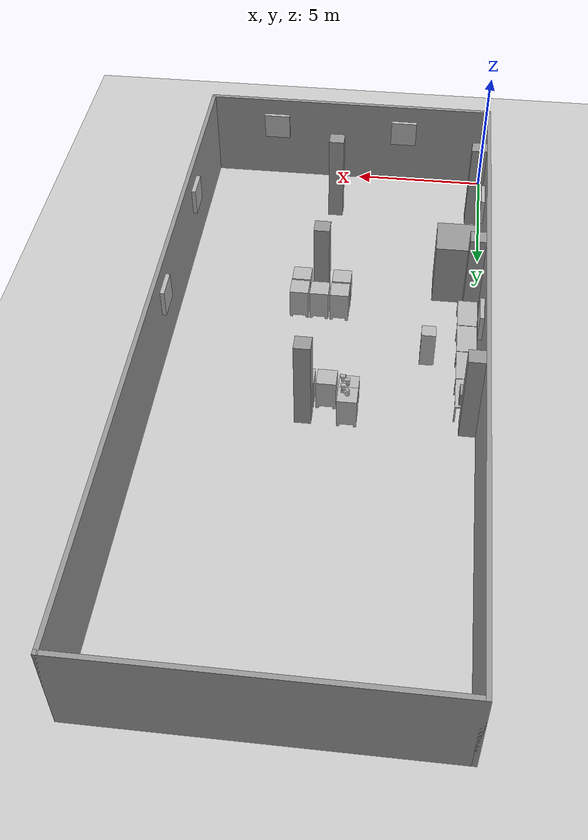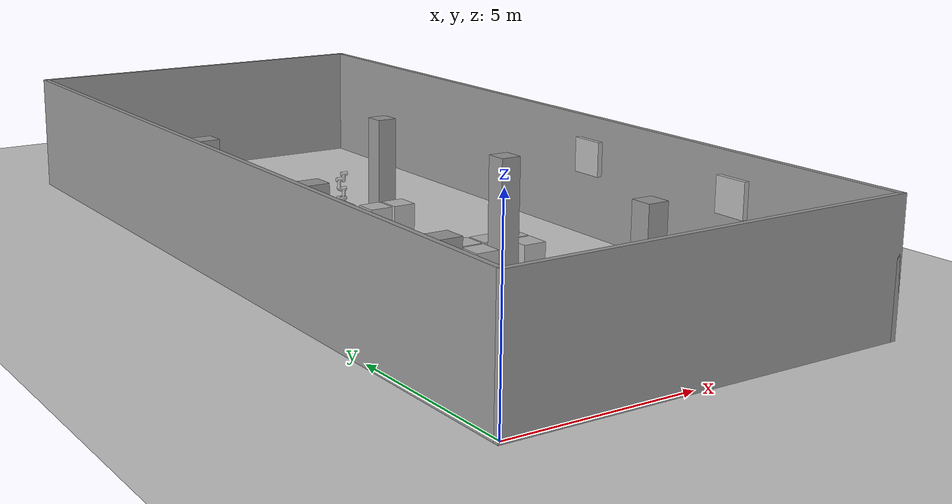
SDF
<sdf version="1.7">
 <world name="default">
  <model name="ground_plane">
   <static>1</static>
   <link name="link">
    <collision name="collision">
     <geometry><plane><normal>0 0 1</normal><size>100 100</size></plane></geometry>
     <surface>
      <contact><collide_bitmask>65535</collide_bitmask></contact>
      <friction><ode><mu>100</mu><mu2>50</mu2></ode></friction>
     </surface>
    </collision>
    <visual name="visual">
     <cast_shadows>0</cast_shadows>
     <geometry><plane><normal>0 0 1</normal><size>100 100</size></plane></geometry>
     <material>
      <script><uri>file://media/materials/scripts/gazebo.material</uri><name>Gazebo/Grey</name></script>
     </material>
    </visual>
   </link>
  </model>
  <model name="moving_box">
   <pose>1.75 10.5 0.5 0 0 0</pose>
   <static>false</static>
   <link name="link">
    <collision name="collision"><geometry><box><size>0.5 0.5 1.8</size></box></geometry></collision>
    <visual name="visual">
     <geometry><box><size>0.5 0.5 1.8</size></box></geometry>
     <material>Gray</material>
    </visual>
   </link>
   <plugin name="move_box_plugin" filename="libmoving_box_plugin.so"/>
  </model>
  <model name="crta_zid">
   <pose>5.45 12.5 0 0 -0 0</pose>
   <link name="Wall_0">
    <collision name="Wall_0_Collision">
     <geometry><box><size>11.2 0.15 3.5</size></box></geometry>
     <pose>0 0 1.75 0 -0 0</pose>
    </collision>
    <visual name="Wall_0_Visual">
     <pose>0 0 1.75 0 -0 0</pose>
     <geometry><box><size>11.2 0.15 3.5</size></box></geometry>
     <material>
      <script><uri>file://media/materials/scripts/gazebo.material</uri><name>Gazebo/Gray</name></script>
      <ambient>1 1 1 1</ambient>
     </material>
     <meta><layer>0</layer></meta>
    </visual>
    <pose>-0 -12.575 0 0 -0 0</pose>
   </link>
   <link name="Wall_2">
    <collision name="Wall_2_Collision">
     <geometry><box><size>25.3 0.15 3.5</size></box></geometry>
     <pose>0 0 1.75 0 -0 0</pose>
    </collision>
    <visual name="Wall_2_Visual">
     <pose>0 0 1.75 0 -0 0</pose>
     <geometry><box><size>25.3 0.15 3.5</size></box></geometry>
     <material>
      <script><uri>file://media/materials/scripts/gazebo.material</uri><name>Gazebo/Grey</name></script>
      <ambient>1 1 1 1</ambient>
     </material>
     <meta><layer>0</layer></meta>
    </visual>
    <pose>-5.525 0 0 0 -0 1.5708</pose>
   </link>
   <link name="Wall_3">
    <collision name="Wall_3_Collision">
     <geometry><box><size>11.2 0.15 3.5</size></box></geometry>
     <pose>0 0 1.75 0 -0 0</pose>
    </collision>
    <visual name="Wall_3_Visual">
     <pose>0 0 1.75 0 -0 0</pose>
     <geometry><box><size>11.2 0.15 3.5</size></box></geometry>
     <material>
      <script><uri>file://media/materials/scripts/gazebo.material</uri><name>Gazebo/Grey</name></script>
      <ambient>1 1 1 1</ambient>
     </material>
     <meta><layer>0</layer></meta>
    </visual>
    <pose>-0 12.575 0 0 -0 0</pose>
   </link>
   <link name="Wall_4">
    <collision name="Wall_4_Collision">
     <geometry><box><size>25.3 0.15 3.5</size></box></geometry>
     <pose>0 0 1.75 0 -0 0</pose>
    </collision>
    <visual name="Wall_4_Visual">
     <pose>0 0 1.75 0 -0 0</pose>
     <geometry><box><size>25.3 0.15 3.5</size></box></geometry>
     <material>
      <script><uri>file://media/materials/scripts/gazebo.material</uri><name>Gazebo/Grey</name></script>
      <ambient>1 1 1 1</ambient>
     </material>
     <meta><layer>0</layer></meta>
    </visual>
    <pose>5.525 0 0 0 -0 -1.5708</pose>
   </link>
   <static>1</static>
  </model>
  <model name="crta_stup_clone_0">
   <link name="link_0">
    <inertial>
     <mass>1</mass>
     <inertia>
      <ixx>0.166667</ixx>
      <ixy>0</ixy>
      <ixz>0</ixz>
      <iyy>0.166667</iyy>
      <iyz>0</iyz>
      <izz>0.166667</izz>
     </inertia>
    </inertial>
    <visual name="visual">
     <geometry><box><size>0.56 0.56 3.5</size></box></geometry>
     <material>
      <lighting>1</lighting>
      <script><uri>file://media/materials/scripts/gazebo.material</uri><name>Gazebo/Grey</name></script>
      <shader type="pixel"><normal_map>__default__</normal_map></shader>
      <ambient>0.3 0.3 0.3 1</ambient>
      <diffuse>0.7 0.7 0.7 1</diffuse>
      <specular>0.01 0.01 0.01 1</specular>
      <emissive>0 0 0 1</emissive>
     </material>
    </visual>
    <collision name="collision">
     <geometry><box><size>0.56 0.56 3.5</size></box></geometry>
     <surface>
      <friction>
       <ode><mu>1</mu><mu2>1</mu2><fdir1>0 0 0</fdir1><slip1>0</slip1><slip2>0</slip2></ode>
       <torsional>
        <coefficient>1</coefficient>
        <patch_radius>0</patch_radius>
        <surface_radius>0</surface_radius>
        <use_patch_radius>1</use_patch_radius>
        <ode><slip>0</slip></ode>
       </torsional>
      </friction>
      <bounce><restitution_coefficient>0</restitution_coefficient><threshold>1e+06</threshold></bounce>
      <contact>
       <collide_without_contact>0</collide_without_contact>
       <collide_without_contact_bitmask>1</collide_without_contact_bitmask>
       <collide_bitmask>1</collide_bitmask>
       <ode>
        <soft_cfm>0</soft_cfm>
        <soft_erp>0.2</soft_erp>
        <kp>1e+13</kp>
        <kd>1</kd>
        <max_vel>0.01</max_vel>
        <min_depth>0</min_depth>
       </ode>
       <bullet>
        <split_impulse>1</split_impulse>
        <split_impulse_penetration_threshold>-0.01</split_impulse_penetration_threshold>
        <soft_cfm>0</soft_cfm>
        <soft_erp>0.2</soft_erp>
        <kp>1e+13</kp>
        <kd>1</kd>
       </bullet>
      </contact>
     </surface>
    </collision>
   </link>
   <static>1</static>
   <pose>5.74 13.66 1.75 0 0 -0.000526</pose>
  </model>
  <model name="crta_stup_clone_1">
   <link name="link_0">
    <inertial>
     <mass>1</mass>
     <inertia>
      <ixx>0.166667</ixx>
      <ixy>0</ixy>
      <ixz>0</ixz>
      <iyy>0.166667</iyy>
      <iyz>0</iyz>
      <izz>0.166667</izz>
     </inertia>
    </inertial>
    <visual name="visual">
     <geometry><box><size>0.56 0.56 3.5</size></box></geometry>
     <material>
      <lighting>1</lighting>
      <script><uri>file://media/materials/scripts/gazebo.material</uri><name>Gazebo/Grey</name></script>
      <shader type="pixel"><normal_map>__default__</normal_map></shader>
      <ambient>0.3 0.3 0.3 1</ambient>
      <diffuse>0.7 0.7 0.7 1</diffuse>
      <specular>0.01 0.01 0.01 1</specular>
      <emissive>0 0 0 1</emissive>
     </material>
    </visual>
    <collision name="collision">
     <geometry><box><size>0.56 0.56 3.5</size></box></geometry>
     <surface>
      <friction>
       <ode><mu>1</mu><mu2>1</mu2><fdir1>0 0 0</fdir1><slip1>0</slip1><slip2>0</slip2></ode>
       <torsional>
        <coefficient>1</coefficient>
        <patch_radius>0</patch_radius>
        <surface_radius>0</surface_radius>
        <use_patch_radius>1</use_patch_radius>
        <ode><slip>0</slip></ode>
       </torsional>
      </friction>
      <bounce><restitution_coefficient>0</restitution_coefficient><threshold>1e+06</threshold></bounce>
      <contact>
       <collide_without_contact>0</collide_without_contact>
       <collide_without_contact_bitmask>1</collide_without_contact_bitmask>
       <collide_bitmask>1</collide_bitmask>
       <ode>
        <soft_cfm>0</soft_cfm>
        <soft_erp>0.2</soft_erp>
        <kp>1e+13</kp>
        <kd>1</kd>
        <max_vel>0.01</max_vel>
        <min_depth>0</min_depth>
       </ode>
       <bullet>
        <split_impulse>1</split_impulse>
        <split_impulse_penetration_threshold>-0.01</split_impulse_penetration_threshold>
        <soft_cfm>0</soft_cfm>
        <soft_erp>0.2</soft_erp>
        <kp>1e+13</kp>
        <kd>1</kd>
       </bullet>
      </contact>
     </surface>
    </collision>
   </link>
   <static>1</static>
   <pose>0.28 13.66 1.75 0 0 -0.000436</pose>
  </model>
  <model name="stolac1_clone_3">
   <static>1</static>
   <link name="base_link">
    <visual name="visual">
     <geometry>
      <mesh><uri>model://stolac1/meshes/crta_stolac1.STL</uri><scale>0.001 0.001 0.001</scale></mesh>
     </geometry>
    </visual>
    <collision name="collision">
     <pose>0.645 0.35 0.375 0 -0 0</pose>
     <geometry><box><size>1.29 0.7 0.75</size></box></geometry>
    </collision>
   </link>
   <pose>0.75 12.0593 0 0 -0 1.5708</pose>
  </model>
  <model name="stolac1_clone_4">
   <static>1</static>
   <link name="base_link">
    <visual name="visual">
     <geometry>
      <mesh><uri>model://stolac1/meshes/crta_stolac1.STL</uri><scale>0.001 0.001 0.001</scale></mesh>
     </geometry>
    </visual>
    <collision name="collision">
     <pose>0.645 0.35 0.375 0 -0 0</pose>
     <geometry><box><size>1.29 0.7 0.75</size></box></geometry>
    </collision>
   </link>
   <pose>0.75 10.7477 0 0 -0 1.5708</pose>
  </model>
  <model name="stolac1_clone_5">
   <static>1</static>
   <link name="base_link">
    <visual name="visual">
     <geometry>
      <mesh><uri>model://stolac1/meshes/crta_stolac1.STL</uri><scale>0.001 0.001 0.001</scale></mesh>
     </geometry>
    </visual>
    <collision name="collision">
     <pose>0.645 0.35 0.375 0 -0 0</pose>
     <geometry><box><size>1.29 0.7 0.75</size></box></geometry>
    </collision>
   </link>
   <pose>0.75 9.43821 0 0 -0 1.5708</pose>
  </model>
  <model name="stolac1_clone_6">
   <static>1</static>
   <link name="base_link">
    <visual name="visual">
     <geometry>
      <mesh><uri>model://stolac1/meshes/crta_stolac1.STL</uri><scale>0.001 0.001 0.001</scale></mesh>
     </geometry>
    </visual>
    <collision name="collision">
     <pose>0.645 0.35 0.375 0 -0 0</pose>
     <geometry><box><size>1.29 0.7 0.75</size></box></geometry>
    </collision>
   </link>
   <pose>0.75 8.12756 0 0 -0 1.5708</pose>
  </model>
  <model name="crta_stup_clone_0_clone">
   <link name="link_0">
    <inertial>
     <mass>1</mass>
     <inertia>
      <ixx>0.166667</ixx>
      <ixy>0</ixy>
      <ixz>0</ixz>
      <iyy>0.166667</iyy>
      <iyz>0</iyz>
      <izz>0.166667</izz>
     </inertia>
    </inertial>
    <visual name="visual">
     <geometry><box><size>0.56 0.56 3.5</size></box></geometry>
     <material>
      <lighting>1</lighting>
      <script><uri>file://media/materials/scripts/gazebo.material</uri><name>Gazebo/Grey</name></script>
      <shader type="pixel"><normal_map>__default__</normal_map></shader>
      <ambient>0.3 0.3 0.3 1</ambient>
      <diffuse>0.7 0.7 0.7 1</diffuse>
      <specular>0.01 0.01 0.01 1</specular>
      <emissive>0 0 0 1</emissive>
     </material>
    </visual>
    <collision name="collision">
     <geometry><box><size>0.56 0.56 3.5</size></box></geometry>
     <surface>
      <friction>
       <ode><mu>1</mu><mu2>1</mu2><fdir1>0 0 0</fdir1><slip1>0</slip1><slip2>0</slip2></ode>
       <torsional>
        <coefficient>1</coefficient>
        <patch_radius>0</patch_radius>
        <surface_radius>0</surface_radius>
        <use_patch_radius>1</use_patch_radius>
        <ode><slip>0</slip></ode>
       </torsional>
      </friction>
      <bounce><restitution_coefficient>0</restitution_coefficient><threshold>1e+06</threshold></bounce>
      <contact>
       <collide_without_contact>0</collide_without_contact>
       <collide_without_contact_bitmask>1</collide_without_contact_bitmask>
       <collide_bitmask>1</collide_bitmask>
       <ode>
        <soft_cfm>0</soft_cfm>
        <soft_erp>0.2</soft_erp>
        <kp>1e+13</kp>
        <kd>1</kd>
        <max_vel>0.01</max_vel>
        <min_depth>0</min_depth>
       </ode>
       <bullet>
        <split_impulse>1</split_impulse>
        <split_impulse_penetration_threshold>-0.01</split_impulse_penetration_threshold>
        <soft_cfm>0</soft_cfm>
        <soft_erp>0.2</soft_erp>
        <kp>1e+13</kp>
        <kd>1</kd>
       </bullet>
      </contact>
     </surface>
    </collision>
   </link>
   <static>1</static>
   <pose>5.74 7.8 1.75 0 0 -0.000526</pose>
  </model>
  <model name="crta_stup_clone_0_clone_0">
   <link name="link_0">
    <inertial>
     <mass>1</mass>
     <inertia>
      <ixx>0.166667</ixx>
      <ixy>0</ixy>
      <ixz>0</ixz>
      <iyy>0.166667</iyy>
      <iyz>0</iyz>
      <izz>0.166667</izz>
     </inertia>
    </inertial>
    <visual name="visual">
     <geometry><box><size>0.56 0.56 3.5</size></box></geometry>
     <material>
      <lighting>1</lighting>
      <script><uri>file://media/materials/scripts/gazebo.material</uri><name>Gazebo/Grey</name></script>
      <shader type="pixel"><normal_map>__default__</normal_map></shader>
      <ambient>0.3 0.3 0.3 1</ambient>
      <diffuse>0.7 0.7 0.7 1</diffuse>
      <specular>0.01 0.01 0.01 1</specular>
      <emissive>0 0 0 1</emissive>
     </material>
    </visual>
    <collision name="collision">
     <geometry><box><size>0.56 0.56 3.5</size></box></geometry>
     <surface>
      <friction>
       <ode><mu>1</mu><mu2>1</mu2><fdir1>0 0 0</fdir1><slip1>0</slip1><slip2>0</slip2></ode>
       <torsional>
        <coefficient>1</coefficient>
        <patch_radius>0</patch_radius>
        <surface_radius>0</surface_radius>
        <use_patch_radius>1</use_patch_radius>
        <ode><slip>0</slip></ode>
       </torsional>
      </friction>
      <bounce><restitution_coefficient>0</restitution_coefficient><threshold>1e+06</threshold></bounce>
      <contact>
       <collide_without_contact>0</collide_without_contact>
       <collide_without_contact_bitmask>1</collide_without_contact_bitmask>
       <collide_bitmask>1</collide_bitmask>
       <ode>
        <soft_cfm>0</soft_cfm>
        <soft_erp>0.2</soft_erp>
        <kp>1e+13</kp>
        <kd>1</kd>
        <max_vel>0.01</max_vel>
        <min_depth>0</min_depth>
       </ode>
       <bullet>
        <split_impulse>1</split_impulse>
        <split_impulse_penetration_threshold>-0.01</split_impulse_penetration_threshold>
        <soft_cfm>0</soft_cfm>
        <soft_erp>0.2</soft_erp>
        <kp>1e+13</kp>
        <kd>1</kd>
       </bullet>
      </contact>
     </surface>
    </collision>
   </link>
   <static>1</static>
   <pose>0.28 7.8 1.75 0 0 -0.000526</pose>
  </model>
  <model name="crta_stup_clone_0_clone_1">
   <link name="link_0">
    <inertial>
     <mass>1</mass>
     <inertia>
      <ixx>0.166667</ixx>
      <ixy>0</ixy>
      <ixz>0</ixz>
      <iyy>0.166667</iyy>
      <iyz>0</iyz>
      <izz>0.166667</izz>
     </inertia>
    </inertial>
    <visual name="visual">
     <geometry><box><size>0.56 0.56 3.5</size></box></geometry>
     <material>
      <lighting>1</lighting>
      <script><uri>file://media/materials/scripts/gazebo.material</uri><name>Gazebo/Grey</name></script>
      <shader type="pixel"><normal_map>__default__</normal_map></shader>
      <ambient>0.3 0.3 0.3 1</ambient>
      <diffuse>0.7 0.7 0.7 1</diffuse>
      <specular>0.01 0.01 0.01 1</specular>
      <emissive>0 0 0 1</emissive>
     </material>
    </visual>
    <collision name="collision">
     <geometry><box><size>0.56 0.56 3.5</size></box></geometry>
     <surface>
      <friction>
       <ode><mu>1</mu><mu2>1</mu2><fdir1>0 0 0</fdir1><slip1>0</slip1><slip2>0</slip2></ode>
       <torsional>
        <coefficient>1</coefficient>
        <patch_radius>0</patch_radius>
        <surface_radius>0</surface_radius>
        <use_patch_radius>1</use_patch_radius>
        <ode><slip>0</slip></ode>
       </torsional>
      </friction>
      <bounce><restitution_coefficient>0</restitution_coefficient><threshold>1e+06</threshold></bounce>
      <contact>
       <collide_without_contact>0</collide_without_contact>
       <collide_without_contact_bitmask>1</collide_without_contact_bitmask>
       <collide_bitmask>1</collide_bitmask>
       <ode>
        <soft_cfm>0</soft_cfm>
        <soft_erp>0.2</soft_erp>
        <kp>1e+13</kp>
        <kd>1</kd>
        <max_vel>0.01</max_vel>
        <min_depth>0</min_depth>
       </ode>
       <bullet>
        <split_impulse>1</split_impulse>
        <split_impulse_penetration_threshold>-0.01</split_impulse_penetration_threshold>
        <soft_cfm>0</soft_cfm>
        <soft_erp>0.2</soft_erp>
        <kp>1e+13</kp>
        <kd>1</kd>
       </bullet>
      </contact>
     </surface>
    </collision>
   </link>
   <static>1</static>
   <pose>5.74 2.4 1.75 0 0 -0.000526</pose>
  </model>
  <model name="crta_stup_clone_0_clone_2">
   <link name="link_0">
    <inertial>
     <mass>1</mass>
     <inertia>
      <ixx>0.166667</ixx>
      <ixy>0</ixy>
      <ixz>0</ixz>
      <iyy>0.166667</iyy>
      <iyz>0</iyz>
      <izz>0.166667</izz>
     </inertia>
    </inertial>
    <visual name="visual">
     <geometry><box><size>0.56 0.56 3.5</size></box></geometry>
     <material>
      <lighting>1</lighting>
      <script><uri>file://media/materials/scripts/gazebo.material</uri><name>Gazebo/Grey</name></script>
      <shader type="pixel"><normal_map>__default__</normal_map></shader>
      <ambient>0.3 0.3 0.3 1</ambient>
      <diffuse>0.7 0.7 0.7 1</diffuse>
      <specular>0.01 0.01 0.01 1</specular>
      <emissive>0 0 0 1</emissive>
     </material>
    </visual>
    <collision name="collision">
     <geometry><box><size>0.56 0.56 3.5</size></box></geometry>
     <surface>
      <friction>
       <ode><mu>1</mu><mu2>1</mu2><fdir1>0 0 0</fdir1><slip1>0</slip1><slip2>0</slip2></ode>
       <torsional>
        <coefficient>1</coefficient>
        <patch_radius>0</patch_radius>
        <surface_radius>0</surface_radius>
        <use_patch_radius>1</use_patch_radius>
        <ode><slip>0</slip></ode>
       </torsional>
      </friction>
      <bounce><restitution_coefficient>0</restitution_coefficient><threshold>1e+06</threshold></bounce>
      <contact>
       <collide_without_contact>0</collide_without_contact>
       <collide_without_contact_bitmask>1</collide_without_contact_bitmask>
       <collide_bitmask>1</collide_bitmask>
       <ode>
        <soft_cfm>0</soft_cfm>
        <soft_erp>0.2</soft_erp>
        <kp>1e+13</kp>
        <kd>1</kd>
        <max_vel>0.01</max_vel>
        <min_depth>0</min_depth>
       </ode>
       <bullet>
        <split_impulse>1</split_impulse>
        <split_impulse_penetration_threshold>-0.01</split_impulse_penetration_threshold>
        <soft_cfm>0</soft_cfm>
        <soft_erp>0.2</soft_erp>
        <kp>1e+13</kp>
        <kd>1</kd>
       </bullet>
      </contact>
     </surface>
    </collision>
   </link>
   <static>1</static>
   <pose>0.28 2.4 1.75 0 0 -0.000526</pose>
  </model>
  <model name="kutija1_clone_2">
   <static>1</static>
   <link name="base_link">
    <visual name="visual">
     <geometry>
      <mesh><uri>model://kutija1/meshes/crta_kutija1.STL</uri><scale>0.001 0.001 0.001</scale></mesh>
     </geometry>
    </visual>
    <collision name="collision">
     <pose>0.335 0.335 0.6 0 -0 0</pose>
     <geometry><box><size>0.67 0.67 1.2</size></box></geometry>
    </collision>
   </link>
   <pose>3.95083 13.2673 0 0 -0 0</pose>
  </model>
  <model name="kutija1_clone_4">
   <static>1</static>
   <link name="base_link">
    <visual name="visual">
     <geometry>
      <mesh><uri>model://kutija1/meshes/crta_kutija1.STL</uri><scale>0.001 0.001 0.001</scale></mesh>
     </geometry>
    </visual>
    <collision name="collision">
     <pose>0.335 0.335 0.6 0 -0 0</pose>
     <geometry><box><size>0.67 0.67 1.2</size></box></geometry>
    </collision>
   </link>
   <pose>4.70436 12.5387 0 0 -0 0</pose>
  </model>
  <model name="kutija1_clone_5">
   <static>1</static>
   <link name="base_link">
    <visual name="visual">
     <geometry>
      <mesh><uri>model://kutija1/meshes/crta_kutija1.STL</uri><scale>0.001 0.001 0.001</scale></mesh>
     </geometry>
    </visual>
    <collision name="collision">
     <pose>0.335 0.335 0.6 0 -0 0</pose>
     <geometry><box><size>0.67 0.67 1.2</size></box></geometry>
    </collision>
   </link>
   <pose>5.44822 12.539 0 0 -0 0</pose>
  </model>
  <model name="kutija1_0_clone">
   <static>1</static>
   <link name="base_link">
    <visual name="visual">
     <geometry>
      <mesh><uri>model://kutija2/meshes/crta_kutija2.STL</uri><scale>0.001 0.001 0.001</scale></mesh>
     </geometry>
    </visual>
    <collision name="collision">
     <pose>0.335 0.335 0.5 0 -0 0</pose>
     <geometry><box><size>0.67 0.67 1</size></box></geometry>
    </collision>
   </link>
   <pose>3.96211 12.5416 0 0 -0 0</pose>
  </model>
  <model name="ur3_robot">
   <static>1</static>
   <link name="base_link">
    <visual name="visual">
     <geometry>
      <mesh><uri>model://simple_ur3_robot/meshes/simple_ur3_robot.STL</uri><scale>0.001 0.001 0.001</scale></mesh>
     </geometry>
    </visual>
    <collision name="collision">
     <pose>0.164 0.075 0.4585 0 -0 0</pose>
     <geometry><box><size>0.328 0.15 0.917</size></box></geometry>
    </collision>
   </link>
   <pose>4.21108 13.5204 1.2 0 -0 0</pose>
  </model>
  <model name="kutija1_clone_5_clone">
   <static>1</static>
   <link name="base_link">
    <visual name="visual">
     <geometry>
      <mesh><uri>model://kutija1/meshes/crta_kutija1.STL</uri><scale>0.001 0.001 0.001</scale></mesh>
     </geometry>
    </visual>
    <collision name="collision">
     <pose>0.335 0.335 0.6 0 -0 0</pose>
     <geometry><box><size>0.67 0.67 1.2</size></box></geometry>
    </collision>
   </link>
   <pose>5.41149 8.15798 0 0 -0 0</pose>
  </model>
  <model name="kutija1_clone_5_clone_0">
   <static>1</static>
   <link name="base_link">
    <visual name="visual">
     <geometry>
      <mesh><uri>model://kutija1/meshes/crta_kutija1.STL</uri><scale>0.001 0.001 0.001</scale></mesh>
     </geometry>
    </visual>
    <collision name="collision">
     <pose>0.335 0.335 0.6 0 -0 0</pose>
     <geometry><box><size>0.67 0.67 1.2</size></box></geometry>
    </collision>
   </link>
   <pose>4.6807 8.16446 0 0 -0 0</pose>
  </model>
  <model name="kutija1_clone_5_clone_1">
   <static>1</static>
   <link name="base_link">
    <visual name="visual">
     <geometry>
      <mesh><uri>model://kutija1/meshes/crta_kutija1.STL</uri><scale>0.001 0.001 0.001</scale></mesh>
     </geometry>
    </visual>
    <collision name="collision">
     <pose>0.335 0.335 0.6 0 -0 0</pose>
     <geometry><box><size>0.67 0.67 1.2</size></box></geometry>
    </collision>
   </link>
   <pose>4.67263 7.42555 0 0 -0 0</pose>
  </model>
  <model name="kutija1_clone_5_clone_2">
   <static>1</static>
   <link name="base_link">
    <visual name="visual">
     <geometry>
      <mesh><uri>model://kutija1/meshes/crta_kutija1.STL</uri><scale>0.001 0.001 0.001</scale></mesh>
     </geometry>
    </visual>
    <collision name="collision">
     <pose>0.335 0.335 0.6 0 -0 0</pose>
     <geometry><box><size>0.67 0.67 1.2</size></box></geometry>
    </collision>
   </link>
   <pose>6.13841 8.15363 0 0 -0 0</pose>
  </model>
  <model name="kutija1_clone_5_clone_3">
   <static>1</static>
   <link name="base_link">
    <visual name="visual">
     <geometry>
      <mesh><uri>model://kutija1/meshes/crta_kutija1.STL</uri><scale>0.001 0.001 0.001</scale></mesh>
     </geometry>
    </visual>
    <collision name="collision">
     <pose>0.335 0.335 0.6 0 -0 0</pose>
     <geometry><box><size>0.67 0.67 1.2</size></box></geometry>
    </collision>
   </link>
   <pose>6.1332 7.42296 0 0 -0 0</pose>
  </model>
  <model name="crat_ormar">
   <link name="link_2">
    <inertial>
     <mass>1</mass>
     <inertia>
      <ixx>0.166667</ixx>
      <ixy>0</ixy>
      <ixz>0</ixz>
      <iyy>0.166667</iyy>
      <iyz>0</iyz>
      <izz>0.166667</izz>
     </inertia>
    </inertial>
    <pose>-0 -0 1e-06 0 -0 0</pose>
    <visual name="visual">
     <geometry><box><size>1.5 1.5 2.5</size></box></geometry>
     <material>
      <lighting>1</lighting>
      <script><uri>file://media/materials/scripts/gazebo.material</uri><name>Gazebo/Grey</name></script>
      <shader type="pixel"><normal_map>__default__</normal_map></shader>
      <ambient>0.3 0.3 0.3 1</ambient>
      <diffuse>0.7 0.7 0.7 1</diffuse>
      <specular>0.01 0.01 0.01 1</specular>
      <emissive>0 0 0 1</emissive>
     </material>
    </visual>
    <collision name="collision">
     <geometry><box><size>1.5 1.5 2.5</size></box></geometry>
     <surface>
      <friction>
       <ode><mu>1</mu><mu2>1</mu2><fdir1>0 0 0</fdir1><slip1>0</slip1><slip2>0</slip2></ode>
       <torsional>
        <coefficient>1</coefficient>
        <patch_radius>0</patch_radius>
        <surface_radius>0</surface_radius>
        <use_patch_radius>1</use_patch_radius>
        <ode><slip>0</slip></ode>
       </torsional>
      </friction>
      <bounce><restitution_coefficient>0</restitution_coefficient><threshold>1e+06</threshold></bounce>
      <contact>
       <collide_without_contact>0</collide_without_contact>
       <collide_without_contact_bitmask>1</collide_without_contact_bitmask>
       <collide_bitmask>1</collide_bitmask>
       <ode>
        <soft_cfm>0</soft_cfm>
        <soft_erp>0.2</soft_erp>
        <kp>1e+13</kp>
        <kd>1</kd>
        <max_vel>0.01</max_vel>
        <min_depth>0</min_depth>
       </ode>
       <bullet>
        <split_impulse>1</split_impulse>
        <split_impulse_penetration_threshold>-0.01</split_impulse_penetration_threshold>
        <soft_cfm>0</soft_cfm>
        <soft_erp>0.2</soft_erp>
        <kp>1e+13</kp>
        <kd>1</kd>
       </bullet>
      </contact>
     </surface>
    </collision>
   </link>
   <static>0</static>
   <pose>0.93546 6.6441 1.25 -1e-06 0 2e-05</pose>
  </model>
  <model name="printer">
   <link name="link_0">
    <inertial>
     <mass>1</mass>
     <inertia>
      <ixx>0.166667</ixx>
      <ixy>0</ixy>
      <ixz>0</ixz>
      <iyy>0.166667</iyy>
      <iyz>0</iyz>
      <izz>0.166667</izz>
     </inertia>
    </inertial>
    <visual name="visual">
     <geometry><box><size>0.5 0.5 0.5</size></box></geometry>
     <material>
      <lighting>1</lighting>
      <script><uri>file://media/materials/scripts/gazebo.material</uri><name>Gazebo/Grey</name></script>
      <shader type="pixel"><normal_map>__default__</normal_map></shader>
      <ambient>0.3 0.3 0.3 1</ambient>
      <diffuse>0.7 0.7 0.7 1</diffuse>
      <specular>0.01 0.01 0.01 1</specular>
      <emissive>0 0 0 1</emissive>
     </material>
    </visual>
    <collision name="collision">
     <geometry><box><size>0.5 0.5 0.5</size></box></geometry>
     <surface>
      <friction>
       <ode><mu>1</mu><mu2>1</mu2><fdir1>0 0 0</fdir1><slip1>0</slip1><slip2>0</slip2></ode>
       <torsional>
        <coefficient>1</coefficient>
        <patch_radius>0</patch_radius>
        <surface_radius>0</surface_radius>
        <use_patch_radius>1</use_patch_radius>
        <ode><slip>0</slip></ode>
       </torsional>
      </friction>
      <bounce><restitution_coefficient>0</restitution_coefficient><threshold>1e+06</threshold></bounce>
      <contact>
       <collide_without_contact>0</collide_without_contact>
       <collide_without_contact_bitmask>1</collide_without_contact_bitmask>
       <collide_bitmask>1</collide_bitmask>
       <ode>
        <soft_cfm>0</soft_cfm>
        <soft_erp>0.2</soft_erp>
        <kp>1e+13</kp>
        <kd>1</kd>
        <max_vel>0.01</max_vel>
        <min_depth>0</min_depth>
       </ode>
       <bullet>
        <split_impulse>1</split_impulse>
        <split_impulse_penetration_threshold>-0.01</split_impulse_penetration_threshold>
        <soft_cfm>0</soft_cfm>
        <soft_erp>0.2</soft_erp>
        <kp>1e+13</kp>
        <kd>1</kd>
       </bullet>
      </contact>
     </surface>
    </collision>
   </link>
   <static>0</static>
   <pose>0.371561 13.0118 1 -0 -0 -0</pose>
  </model>
  <model name="poster_clone_clone_0_clone_0">
   <static>1</static>
   <link name="poster_link">
    <collision name="poster_collision">
     <geometry><box><size>1 0.15 1</size></box></geometry>
     <surface><contact><collide_without_contact>1</collide_without_contact></contact></surface>
    </collision>
    <visual name="poster_visual">
     <geometry><box><size>1 0.15 1</size></box></geometry>
     <material>
      <script>
       <uri>model://poster/materials/scripts</uri>
       <uri>model://poster/materials/textures</uri>
       <name>Poster/PosterTexture</name>
      </script>
     </material>
    </visual>
   </link>
   <pose>10.823 10.6818 2.34482 0 0 -1.5708</pose>
  </model>
  <model name="poster_clone_clone_0_clone_1">
   <static>1</static>
   <link name="poster_link">
    <collision name="poster_collision">
     <geometry><box><size>1 0.15 1</size></box></geometry>
     <surface><contact><collide_without_contact>1</collide_without_contact></contact></surface>
    </collision>
    <visual name="poster_visual">
     <geometry><box><size>1 0.15 1</size></box></geometry>
     <material>
      <script>
       <uri>model://poster/materials/scripts</uri>
       <uri>model://poster/materials/textures</uri>
       <name>Poster/PosterTexture</name>
      </script>
     </material>
    </visual>
   </link>
   <pose>10.823 5.00476 2.34482 0 0 -1.5708</pose>
  </model>
  <model name="poster_clone_clone_0_clone_4">
   <static>1</static>
   <link name="poster_link">
    <collision name="poster_collision">
     <geometry><box><size>1 0.15 1</size></box></geometry>
     <surface><contact><collide_without_contact>1</collide_without_contact></contact></surface>
    </collision>
    <visual name="poster_visual">
     <geometry><box><size>1 0.15 1</size></box></geometry>
     <material>
      <script>
       <uri>model://poster/materials/scripts</uri>
       <uri>model://poster/materials/textures</uri>
       <name>Poster/PosterTexture</name>
      </script>
     </material>
    </visual>
   </link>
   <pose>0.07 10.7252 2.34482 0 0 -1.5708</pose>
  </model>
  <model name="poster_clone_clone_0_clone_5">
   <static>1</static>
   <link name="poster_link">
    <collision name="poster_collision">
     <geometry><box><size>1 0.15 1</size></box></geometry>
     <surface><contact><collide_without_contact>1</collide_without_contact></contact></surface>
    </collision>
    <visual name="poster_visual">
     <geometry><box><size>1 0.15 1</size></box></geometry>
     <material>
      <script>
       <uri>model://poster/materials/scripts</uri>
       <uri>model://poster/materials/textures</uri>
       <name>Poster/PosterTexture</name>
      </script>
     </material>
    </visual>
   </link>
   <pose>0.07 4.43417 2.34482 0 0 -1.5708</pose>
  </model>
  <model name="poster_clone_clone_1">
   <static>1</static>
   <link name="poster_link">
    <collision name="poster_collision">
     <geometry><box><size>1 0.15 1</size></box></geometry>
     <surface><contact><collide_without_contact>1</collide_without_contact></contact></surface>
    </collision>
    <visual name="poster_visual">
     <geometry><box><size>1 0.15 1</size></box></geometry>
     <material>
      <script>
       <uri>model://poster/materials/scripts</uri>
       <uri>model://poster/materials/textures</uri>
       <name>Poster/PosterTexture</name>
      </script>
     </material>
    </visual>
   </link>
   <pose>3.24647 0.07 2.34482 0 -0 0</pose>
  </model>
  <model name="poster_clone_clone_1_clone">
   <static>1</static>
   <link name="poster_link">
    <collision name="poster_collision">
     <geometry><box><size>1 0.15 1</size></box></geometry>
     <surface><contact><collide_without_contact>1</collide_without_contact></contact></surface>
    </collision>
    <visual name="poster_visual">
     <geometry><box><size>1 0.15 1</size></box></geometry>
     <material>
      <script>
       <uri>model://poster/materials/scripts</uri>
       <uri>model://poster/materials/textures</uri>
       <name>Poster/PosterTexture</name>
      </script>
     </material>
    </visual>
   </link>
   <pose>8.39842 0.07 2.34482 0 -0 0</pose>
  </model>
 </world>
</sdf>
